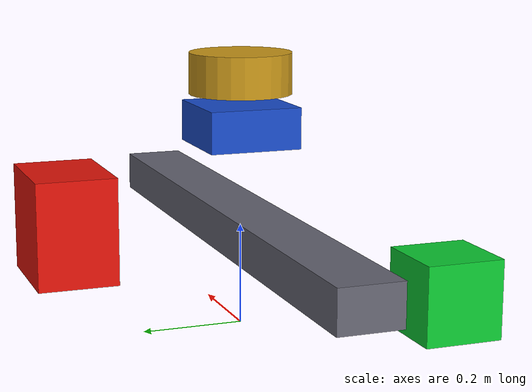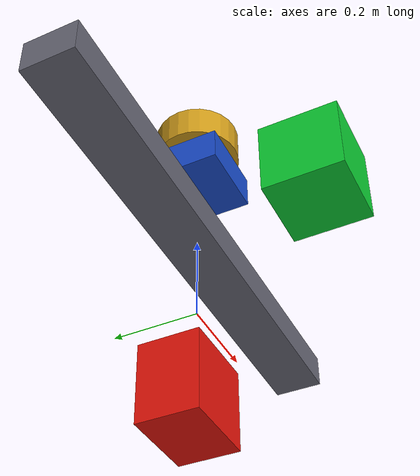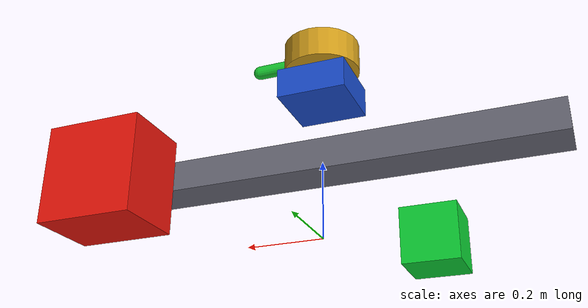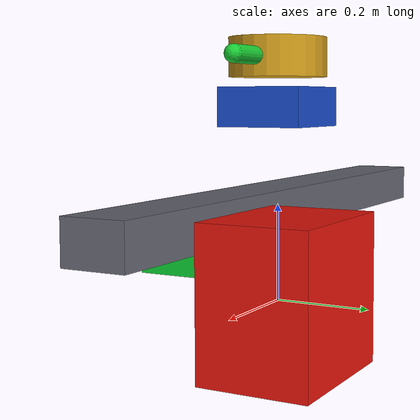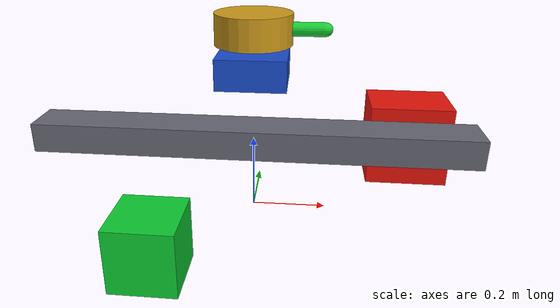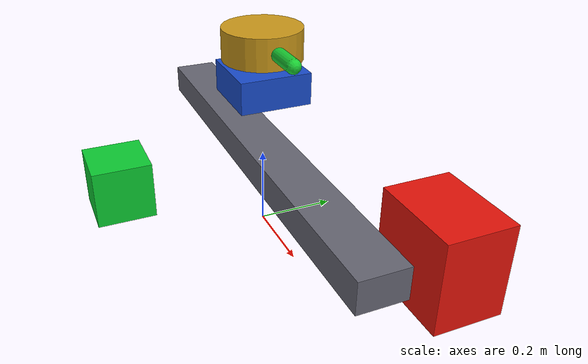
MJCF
<mujoco model="moving-camera-mechanism">
  <compiler angle="radian" autolimits="true"/>
  <option timestep="0.002"/>
  <visual><global offwidth="320" offheight="240"/><headlight ambient=".35 .35 .35" diffuse=".7 .7 .7" specular=".1 .1 .1"/></visual>
  <default><camera fovy="60" resolution="320 240"/><joint damping="2" armature=".05"/><geom friction="1 .005 .0001"/></default>
  <worldbody>
    <light pos="1 -1 3" dir="-.2 .1 -1" diffuse=".8 .8 .8"/>
    <body name="base" pos="0 0 .2">
      <geom type="box" size=".6 .06 .04" rgba=".4 .4 .45 1"/>
      <camera name="overview" pos="0 0 2.3" quat="1 0 0 0"/>
      <site name="overview_mount" pos="0 0 2.3" quat="1 0 0 0" size=".002" rgba="0 0 0 0"/>
      <body name="carriage" pos="0 0 .2">
        <joint name="travel" type="slide" axis="1 0 0" range="-.5 .5"/>
        <geom type="box" size=".09 .09 .04" mass="1" rgba=".1 .3 .8 1"/>
        <body name="turntable" pos="0 0 .1">
          <joint name="yaw" type="hinge" axis="0 0 1" range="-1.2 1.2"/>
          <geom type="cylinder" size=".1 .04" mass=".5" rgba=".8 .6 .1 1"/>
          <geom type="capsule" fromto="0 0 0 .18 0 0" size=".018" mass=".1" rgba=".1 .8 .2 1"/>
          <camera name="wrist" pos=".15 0 .9" euler="0 0 .15" fovy="70"/>
          <site name="wrist_mount" pos=".15 0 .9" euler="0 0 .15" size=".002" rgba="0 0 0 0"/>
        </body>
      </body>
    </body>
    <body name="red_landmark" pos=".45 .25 .12"><geom type="box" size=".12 .09 .12" rgba=".9 .08 .04 1"/></body>
    <body name="green_landmark" pos="-.2 -.35 .08"><geom type="box" size=".08 .08 .08" rgba=".05 .8 .2 1"/></body>
  </worldbody>
  <actuator>
    <position name="travel_position" joint="travel" kp="250" kv="35"/>
    <position name="yaw_position" joint="yaw" kp="180" kv="25"/>
  </actuator>
</mujoco>
